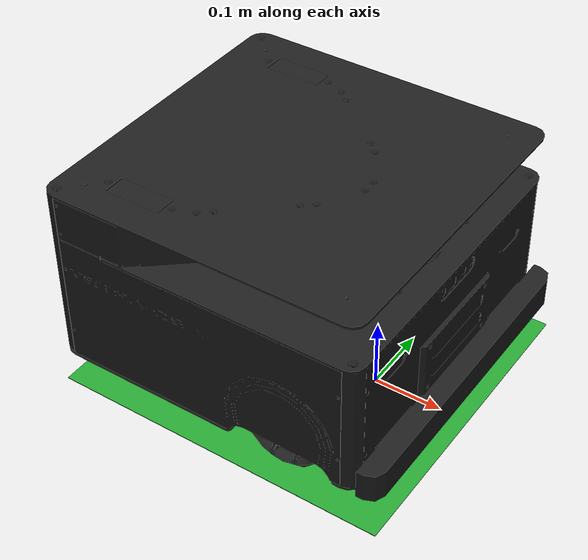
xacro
<?xml version="1.0"?>

<robot name="tetra" xmlns:xacro="http://ros.org/wiki/xacro">

  <!-- Define a number of dimensions using properties -->
  <xacro:property name="base_length" value="0.492" />
  <xacro:property name="base_radius" value="0.460" />
  <xacro:property name="wheel_offset_x" value="0.0" />
  <xacro:property name="wheel_offset_y" value="0.1975" />
  <xacro:property name="wheel_offset_z" value="0" />

  <!-- define a wheel -->
  <joint name="base_l_wheel_joint" type="fixed">
    <axis xyz="0 1 0" />
    <origin xyz="${wheel_offset_x} ${wheel_offset_y} ${wheel_offset_z}" rpy="0 0 0" />
    <parent link="base_link" />
    <child link="base_l_wheel_link" />
  </joint>
  <link name="base_l_wheel_link" />

  <joint name="base_r_wheel_joint" type="fixed">
    <axis xyz="0 1 0" />
    <origin xyz="${wheel_offset_x} ${-wheel_offset_y} ${wheel_offset_z}" rpy="0 0 0" />
    <parent link="base_link" />
    <child link="base_r_wheel_link" />
  </joint>
  <link name="base_r_wheel_link" />

  <!-- The base xacro macro -->
  <link name="base_link">
    <visual>
      <origin xyz=" 0 0 0 " rpy="0 0 0" />
      <geometry>
        <mesh filename="package://tetra_description/meshes/tetra_dsv_edu.stl" scale="0.001 0.001 0.001" />
      </geometry>
      <material name="black" />
    </visual>
    <collision>
      <origin xyz="0 0 0" rpy="0 0 0" />
      <geometry>
        <mesh filename="package://tetra_description/meshes/tetra_dsv_edu.stl" scale="0.001 0.001 0.001" />
      </geometry>
    </collision>
  </link>

  <link name="base_footprint">
    <visual>
      <origin xyz="-0.104 0 0" rpy="0 0 0" />
      <geometry>
	      <box size="${base_length} ${base_radius} 0.001" />
      </geometry>
      <material name="transparentgreen" />
    </visual>
  </link>

  <joint name="base_joint" type="fixed">
    <origin xyz="0 0 0.1" rpy="0 0 0" />
    <parent link="base_footprint" />
    <child link="base_link" />
  </joint>

  <!-- Rear Caster-->
  <joint name="rear_caster_rotate_joint" type="fixed">
    <parent link="base_link" />
    <child link="rear_caster_rotate" />
    <origin xyz="-0.281 0 0.00303" rpy="0 0 0" />
    <axis xyz="0 0 1" />
  </joint>
  <link name="rear_caster_rotate" />

  <joint name="rear_caster_wheel_joint" type="fixed">
    <parent link="rear_caster_rotate" />
    <child link="rear_caster_wheel" />
    <origin xyz="-0.022 0 -0.04632" rpy="0 0 0" />
    <axis xyz="0 1 0" />
  </joint>
  <link name="rear_caster_wheel" />

</robot>
